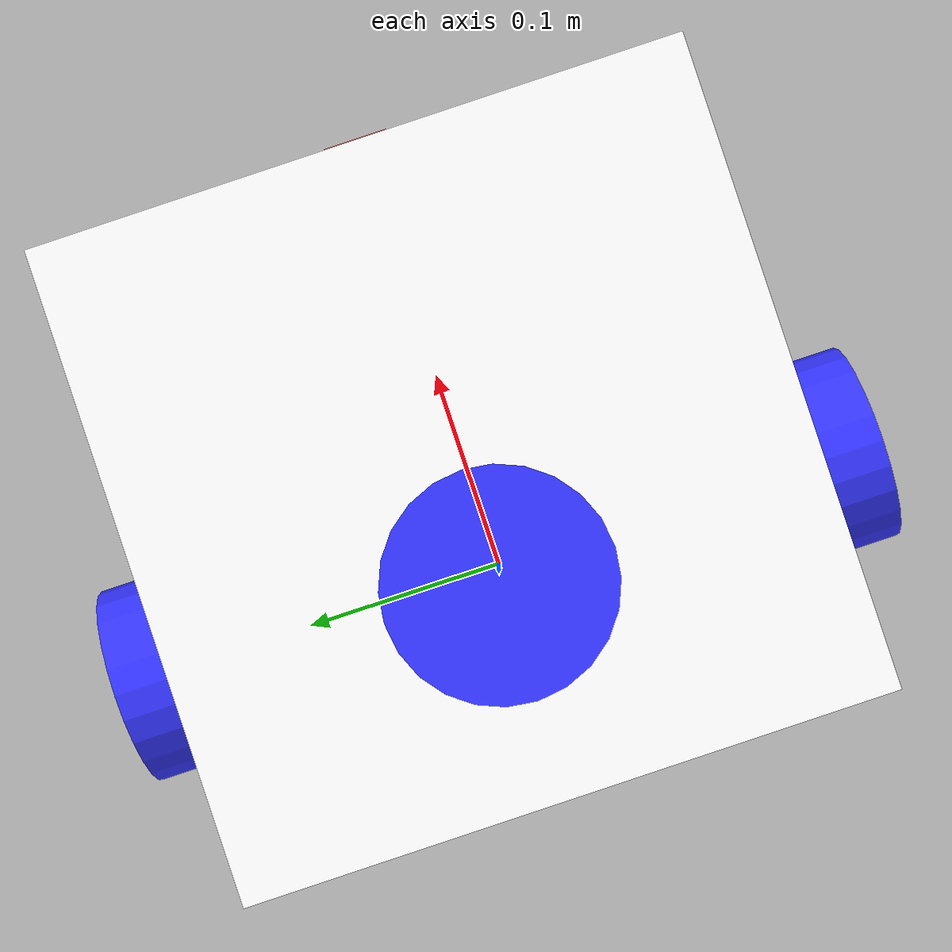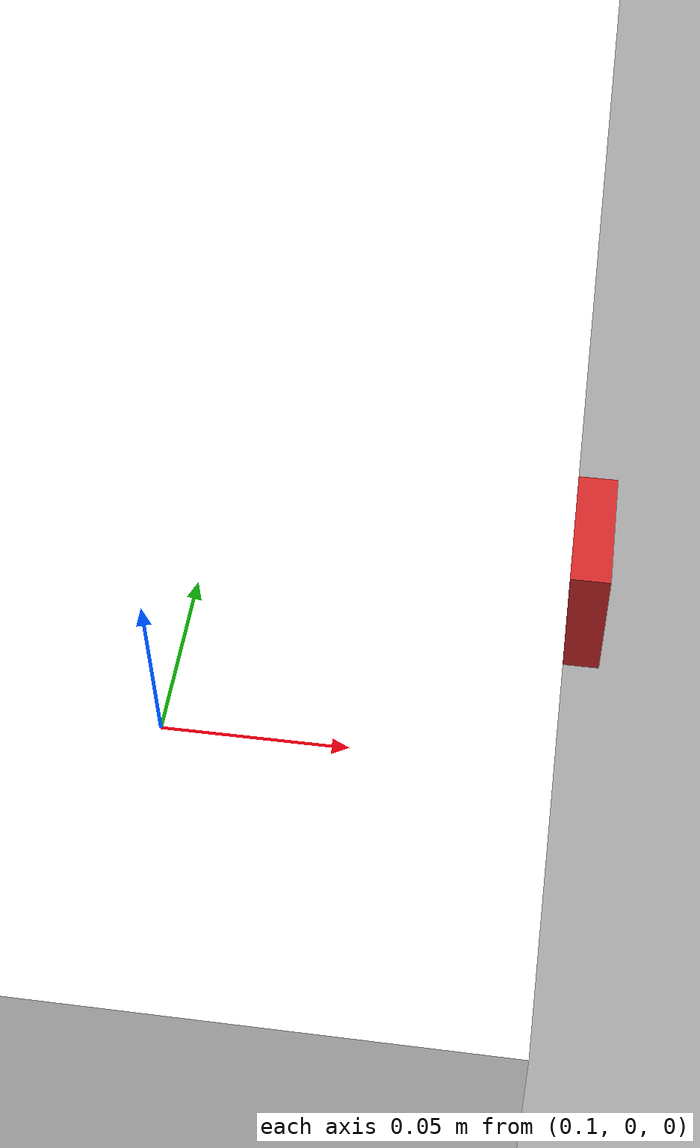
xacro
<?xml version="1.0"?>
<robot xmlns:xacro="http://www.ros.org/wiki/xacro"  name="robot">

    <xacro:include filename="properties.xacro"/>
    <xacro:include filename="robot_core.xacro"/>
    <xacro:include filename="gazebo_control.xacro"/>
    <xacro:include filename="lidar.xacro"/>
    <xacro:include filename="imu.xacro"/>
    <xacro:include filename="camera.xacro"/>

</robot>

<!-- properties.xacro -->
<robot xmlns:xacro="http://www.ros.org/wiki/xacro">
    <!-- Color Definitions -->
    <material name="white">
        <color rgba= "1 1 1 1"/>
    </material>

    <material name="red">
        <color rgba= "1 0 0 1"/>
    </material>

    <material name="orange">
        <color rgba= "1 0.3 0.1 1"/>
    </material>

    <material name="blue">
        <color rgba= "0.2 0.2 1 1"/>
    </material>

    <material name="black">
        <color rgba= "0 0 0 1"/>
    </material>

    <gazebo reference="chassis">
        <material>Gazebo/White</material>
    </gazebo>

    <gazebo reference="left_wheel">
        <material>Gazebo/Blue</material>
    </gazebo>

    <gazebo reference="right_wheel">
        <material>Gazebo/Blue</material>
    </gazebo>

    <gazebo reference="caster_wheel">
        <material>Gazebo/Black</material>
        <mu1 value = "0.001" />
        <mu2 value = "0.001" />
    </gazebo>

</robot>

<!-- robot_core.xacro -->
<robot xmlns:xacro="http://www.ros.org/wiki/xacro">

    <!-- Example link -->
    <xacro:include filename="inertial_macros.xacro"/>

   <!-- Example link -->
    <link name="base_link">
    </link>

    <!-- Example link -->
    <link name="base_footprint">
    </link>

 <joint name="base_footprint_joint" type="fixed">
        <parent link="base_link"/>
        <child link="base_footprint"/>
        <origin xyz="0 0 0"/>
    </joint>

    <joint name="base_link" type="fixed">
        <parent link="base_link"/>
        <child link="chassis"/>
        <origin xyz="-0.1 0 0"/>
    </joint>

    <!-- chassis link -->
    <link name="chassis">
        <visual>
            <origin xyz="0.15 0 0.075"/>
            <geometry>
                <box size="0.3 0.3 0.15"/>
            </geometry>
            <material name="white"/>
        </visual>
        <collision>
            <origin xyz="0.15 0 0.075"/>
            <geometry>
                <box size="0.3 0.3 0.15"/>
            </geometry>
        </collision>
         <xacro:inertial_box mass="0.5" x="0.3" y="0.3" z="0.15">
            <origin xyz="0.15 0 0.075" rpy="0 0 0"/>
        </xacro:inertial_box>
    </link>

    <!-- left wheel joint -->
    <joint name="left_wheel_joint" type="continuous">
        <parent link="base_link"/>
        <child link="left_wheel"/>
        <origin xyz="0 0.175 0" rpy="-${pi/2} 0 0"/>
        <axis xyz="0 0 1"/>
    </joint>

    <!-- left wheel link -->
    <link name="left_wheel">
        <visual>
            <geometry>
                <cylinder radius="0.05" length="0.04"/>
            </geometry>
            <material name="blue"/>
        </visual>
        <collision>
            <geometry>
                <cylinder radius="0.05" length="0.04"/>
            </geometry>
        </collision>
        <xacro:inertial_cylinder mass="0.1" length="0.04" radius="0.05">
            <origin xyz="0 0 0" rpy="0 0 0"/>
        </xacro:inertial_cylinder>
    </link>

    <!-- right wheel joint -->
    <joint name="right_wheel_joint" type="continuous">
        <parent link="base_link"/>
        <child link="right_wheel"/>
        <origin xyz="0 -0.175 0" rpy="${pi/2} 0 0"/>
        <axis xyz="0 0 -1"/>
    </joint>

    <!-- right wheel link -->
    <link name="right_wheel">
        <visual>
            <geometry>
                <cylinder radius="0.05" length="0.04"/>
            </geometry>
            <material name="blue"/>
        </visual>
        <collision>
            <geometry>
                <cylinder radius="0.05" length="0.04"/>
            </geometry>
        </collision>
        <xacro:inertial_cylinder mass="0.1" length="0.04" radius="0.05">
            <origin xyz="0 0 0" rpy="0 0 0"/>
        </xacro:inertial_cylinder>
    </link>

    <!-- caster wheel joint -->
    <joint name="caster_wheel_joint" type="fixed">
        <parent link="chassis"/>
        <child link="caster_wheel"/>
        <origin xyz="0.24 0 0"/>
    </joint>

    <!-- left wheel link -->
    <link name="caster_wheel">
        <visual>
            <geometry>
                <sphere radius="0.05"/>
            </geometry>
            <material name="black"/>
        </visual>
        <collision>
            <geometry>
                <sphere radius="0.05"/>
            </geometry>
        </collision>
        <xacro:inertial_sphere mass="0.1" radius="0.05">
            <origin xyz="0 0 0" rpy="0 0 0"/>
        </xacro:inertial_sphere>
    </link>

    <gazebo reference="chassis">
        <material>Gazebo/White</material>
    </gazebo>

    <gazebo reference="left_wheel">
        <material>Gazebo/Blue</material>
    </gazebo>

    <gazebo reference="right_wheel">
        <material>Gazebo/Blue</material>
    </gazebo>

    <gazebo reference="caster_wheel">
        <material>Gazebo/Black</material>
        <mu1 value = "0.001" />
        <mu2 value = "0.001" />
    </gazebo>

</robot>

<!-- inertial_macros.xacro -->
<robot xmlns:xacro="http://www.ros.org/wiki/xacro" >

    <!-- Specify some standard inertial calculations https://en.wikipedia.org/wiki/List_of_moments_of_inertia -->
    <!-- These make use of xacro's mathematical functionality -->

    <xacro:macro name="inertial_sphere" params="mass radius *origin">
        <inertial>
            <xacro:insert_block name="origin"/>
            <mass value="${mass}" />
            <inertia ixx="${(2/5) * mass * (radius*radius)}" ixy="0.0" ixz="0.0"
                    iyy="${(2/5) * mass * (radius*radius)}" iyz="0.0"
                    izz="${(2/5) * mass * (radius*radius)}" />
        </inertial>
    </xacro:macro>

    <xacro:macro name="inertial_box" params="mass x y z *origin">
        <inertial>
            <xacro:insert_block name="origin"/>
            <mass value="${mass}" />
            <inertia ixx="${(1/12) * mass * (y*y+z*z)}" ixy="0.0" ixz="0.0"
                    iyy="${(1/12) * mass * (x*x+z*z)}" iyz="0.0"
                    izz="${(1/12) * mass * (x*x+y*y)}" />
        </inertial>
    </xacro:macro>

    <xacro:macro name="inertial_cylinder" params="mass length radius *origin">
        <inertial>
            <xacro:insert_block name="origin"/>
            <mass value="${mass}" />
            <inertia ixx="${(1/12) * mass * (3*radius*radius + length*length)}" ixy="0.0" ixz="0.0"
                    iyy="${(1/12) * mass * (3*radius*radius + length*length)}" iyz="0.0"
                    izz="${(1/2) * mass * (radius*radius)}" />
        </inertial>
    </xacro:macro>
</robot>

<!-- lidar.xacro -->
<robot xmlns:xacro="http://www.ros.org/wiki/xacro">

    <!-- lidar joint -->
    <joint name="laser_joint" type="fixed">
        <parent link="chassis"/>
        <child link="laser_frame"/>
        <origin xyz="0.1 0 0.175" rpy="0 0 0"/>
    </joint>

    <!-- laser_frame -->
    <link name="laser_frame">
        <visual>
            <geometry>
                <cylinder radius="0.05" length="0.04"/>
            </geometry>
            <material name="blue"/>
        </visual>
        <collision>
            <geometry>
                <cylinder radius="0.05" length="0.04"/>
            </geometry>
        </collision>
        <xacro:inertial_cylinder mass="0.1" length="0.04" radius="0.05">
            <origin xyz="0 0 0" rpy="0 0 0"/>
        </xacro:inertial_cylinder>
    </link>

    <gazebo reference="laser_frame">
        <material>Gazebo/Red</material>
        <sensor name="laser" type="ray">
            <pose>0 0 0 0 0 0</pose>
            <visualize>false</visualize>
            <update_rate>10</update_rate>
            <ray>
                <scan>
                    <horizontal>
												<!--samples> is the number of simulated lidar rays to generate per complete laser sweep cycle.-->
                        <samples>360</samples>
												<!--resolution>: this number is multiplied by samples to determine the number range data points.-->
                        <resolution>1</resolution>
							          <min_angle>-3.14</min_angle>
                        <max_angle>3.14</max_angle>
                    </horizontal>
                </scan>
                <range>
                    <min>0.3</min>
                    <max>12</max>
                    <resolution>0.01</resolution>
                </range>
            </ray>
            <plugin name="laser_controller" filename="libgazebo_ros_ray_sensor.so">
                <ros>
                    <remapping>~/out:=scan</remapping>
                </ros>
                <output_type>sensor_msgs/LaserScan</output_type>
                <frame_name>laser_frame</frame_name>
            </plugin>
        </sensor>
    </gazebo>

</robot>

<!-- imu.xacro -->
<robot xmlns:xacro="http://www.ros.org/wiki/xacro">

    <!-- Define the IMU link -->
    <link name="imu_link">
        <visual>
            <geometry>
                <box size="0.05 0.05 0.05"/>
            </geometry>
            <material name="blue">
                <color rgba="0 0 1 1"/>
            </material>
        </visual>
        <collision>
            <geometry>
                <box size="0.05 0.05 0.05"/>
            </geometry>
        </collision>
        <inertial>
            <mass value="0.1"/>
            <origin xyz="0 0 0" rpy="0 0 0"/>
            <inertia ixx="0.0001" ixy="0.0" ixz="0.0" iyy="0.0001" iyz="0.0" izz="0.0001"/>
        </inertial>
    </link>

    <!-- Define the IMU joint -->
    <joint name="imu_joint" type="fixed">
        <parent link="base_link"/>
        <child link="imu_link"/>
        <origin xyz="0 0 0.1" rpy="0 0 0"/>
    </joint>

    <!-- Define the IMU sensor -->
    <gazebo reference="imu_link">
        <gravity>true</gravity>
        <sensor name='imu_sensor' type='imu'>
            <always_on>1</always_on>
            <update_rate>100</update_rate>
            <visualize>1</visualize>
            <topic>/imu</topic>  <!-- Updated topic name -->
            <plugin name='imu_plugin' filename='libgazebo_ros_imu_sensor.so'>
                <topicName>/imu</topicName>  <!-- Updated topic name -->
                <bodyName>imu_link</bodyName>
                <updateRateHZ>10.0</updateRateHZ>
                <gaussianNoise>0.0</gaussianNoise>
                <xyzOffset>0 0 0</xyzOffset>
                <rpyOffset>0 0 0</rpyOffset>
            </plugin>
            <pose>0 0 0 0 0 0</pose>
        </sensor>
    </gazebo>
</robot>

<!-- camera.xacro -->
<robot xmlns:xacro="http://www.ros.org/wiki/xacro" >

    <joint name="camera_joint" type="fixed">
        <parent link="chassis"/>
        <child link="camera_link"/>
        <origin xyz="0.305 0 0.08" rpy="0 0 0"/>
    </joint>

    <link name="camera_link">
        <visual>
            <geometry>
                <box size="0.010 0.03 0.03"/>
            </geometry>
        </visual>
    </link>

    <joint name="camera_optical_joint" type="fixed">
        <parent link="camera_link"/>
        <child link="camera_link_optical"/>
        <origin xyz="0 0 0" rpy="${-pi/2} 0 ${-pi/2}"/>
    </joint>

    <link name="camera_link_optical"></link>

    <gazebo reference="camera_link">
        <material>Gazebo/Red</material>

        <sensor name="camera" type="depth">
            <pose> 0 0 0 0 0 0 </pose>
            <visualize>true</visualize>
            <update_rate>10</update_rate>
            <camera>
                <horizontal_fov>1.089</horizontal_fov>
                <image>
                    <format>B8G8R8</format>
                    <width>640</width>
                    <height>480</height>
                </image>
                <clip>
                    <near>0.05</near>
                    <far>8.0</far>
                </clip>
            </camera>
            <plugin name="camera_controller" filename="libgazebo_ros_camera.so">
                <frame_name>camera_link_optical</frame_name>
                <min_depth>0.1</min_depth>
                <max_depth>100.0</max_depth>
                <imageTopicName>/camera/camera/color/image_raw</imageTopicName>
                <cameraInfoTopicName>/camera/camera/color/camera_info</cameraInfoTopicName>
                <depthImageTopicName>/camera/camera/depth/image_raw</depthImageTopicName>
                <depthImageInfoTopicName>/camera/camera/depth/camera_info</depthImageInfoTopicName>
                <pointCloudTopicName>/camera/camera/color/depth/points</pointCloudTopicName>
            </plugin>
        </sensor>
    </gazebo>

</robot>
